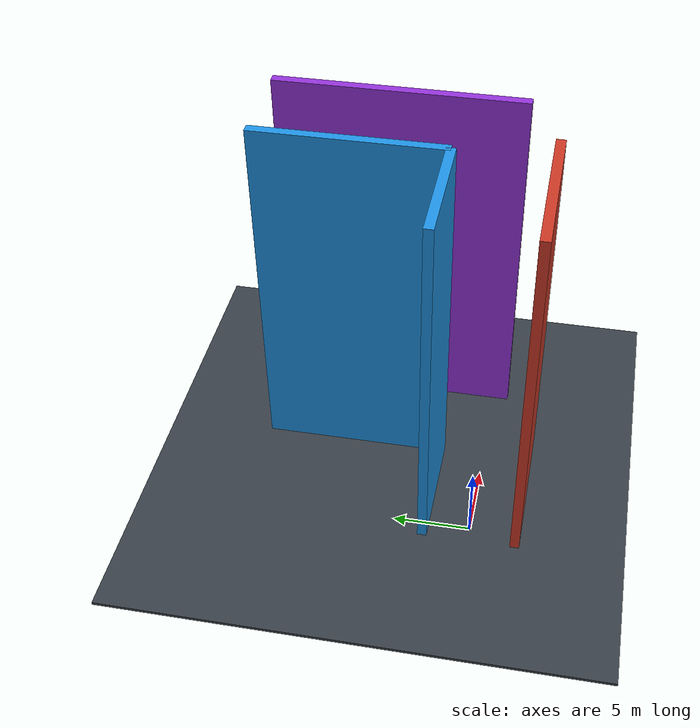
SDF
<sdf version="1.9">
 <world name="iris_mppi_right_angle">
  <physics name="1ms" type="ignore">
   <max_step_size>0.001</max_step_size>
   <real_time_factor>1.0</real_time_factor>
  </physics>
  <plugin filename="gz-sim-physics-system" name="gz::sim::systems::Physics"/>
  <plugin filename="gz-sim-sensors-system" name="gz::sim::systems::Sensors">
   <render_engine>ogre2</render_engine>
  </plugin>
  <plugin filename="gz-sim-user-commands-system" name="gz::sim::systems::UserCommands"/>
  <plugin filename="gz-sim-scene-broadcaster-system" name="gz::sim::systems::SceneBroadcaster"/>
  <plugin filename="gz-sim-imu-system" name="gz::sim::systems::Imu"/>
  <plugin filename="gz-sim-magnetometer-system" name="gz::sim::systems::Magnetometer"/>
  <plugin filename="gz-sim-air-pressure-system" name="gz::sim::systems::AirPressure"/>
  <plugin filename="gz-sim-navsat-system" name="gz::sim::systems::NavSat"/>
  <spherical_coordinates>
   <surface_model>EARTH_WGS84</surface_model>
   <latitude_deg>-35.363262</latitude_deg>
   <longitude_deg>149.165237</longitude_deg>
   <elevation>584</elevation>
   <heading_deg>0</heading_deg>
  </spherical_coordinates>
  <magnetic_field>2.1e-5 5.0e-6 -4.2e-5</magnetic_field>
  <scene><ambient>0.45 0.45 0.45 1</ambient><background>0.08 0.1 0.14 1</background><grid>true</grid></scene>
  <light type="directional" name="sun">
   <pose>0 0 40 0 0 0</pose>
   <diffuse>0.9 0.9 0.9 1</diffuse>
   <direction>-0.4 0.2 -1</direction>
  </light>
  <model name="ground">
   <static>true</static>
   <pose>6 6 -0.1 0 0 0</pose>
   <link name="link">
    <collision name="collision"><geometry><box><size>32 32 0.2</size></box></geometry></collision>
    <visual name="visual">
     <geometry><box><size>32 32 0.2</size></box></geometry>
     <material><ambient>0.16 0.18 0.2 1</ambient><diffuse>0.22 0.25 0.28 1</diffuse></material>
    </visual>
   </link>
  </model>
  <model name="south_wall">
   <static>true</static>
   <pose>4 -3 12 0 0 0</pose>
   <link name="link">
    <collision name="collision"><geometry><box><size>10 0.6 24</size></box></geometry></collision>
    <visual name="visual">
     <geometry><box><size>10 0.6 24</size></box></geometry>
     <material><ambient>0.65 0.18 0.12 1</ambient><diffuse>0.8 0.22 0.15 1</diffuse></material>
    </visual>
   </link>
  </model>
  <model name="north_inner_wall">
   <static>true</static>
   <pose>3 3 12 0 0 0</pose>
   <link name="link">
    <collision name="collision"><geometry><box><size>8 0.6 24</size></box></geometry></collision>
    <visual name="visual">
     <geometry><box><size>8 0.6 24</size></box></geometry>
     <material><ambient>0.1 0.45 0.75 1</ambient><diffuse>0.12 0.58 0.9 1</diffuse></material>
    </visual>
   </link>
  </model>
  <model name="west_vertical_wall">
   <static>true</static>
   <pose>7 9 12 0 0 0</pose>
   <link name="link">
    <collision name="collision"><geometry><box><size>0.6 12 24</size></box></geometry></collision>
    <visual name="visual">
     <geometry><box><size>0.6 12 24</size></box></geometry>
     <material><ambient>0.1 0.45 0.75 1</ambient><diffuse>0.12 0.58 0.9 1</diffuse></material>
    </visual>
   </link>
  </model>
  <model name="east_vertical_wall">
   <static>true</static>
   <pose>13 7 12 0 0 0</pose>
   <link name="link">
    <collision name="collision"><geometry><box><size>0.6 16 24</size></box></geometry></collision>
    <visual name="visual">
     <geometry><box><size>0.6 16 24</size></box></geometry>
     <material><ambient>0.48 0.15 0.7 1</ambient><diffuse>0.58 0.2 0.85 1</diffuse></material>
    </visual>
   </link>
  </model>
 </world>
</sdf>
